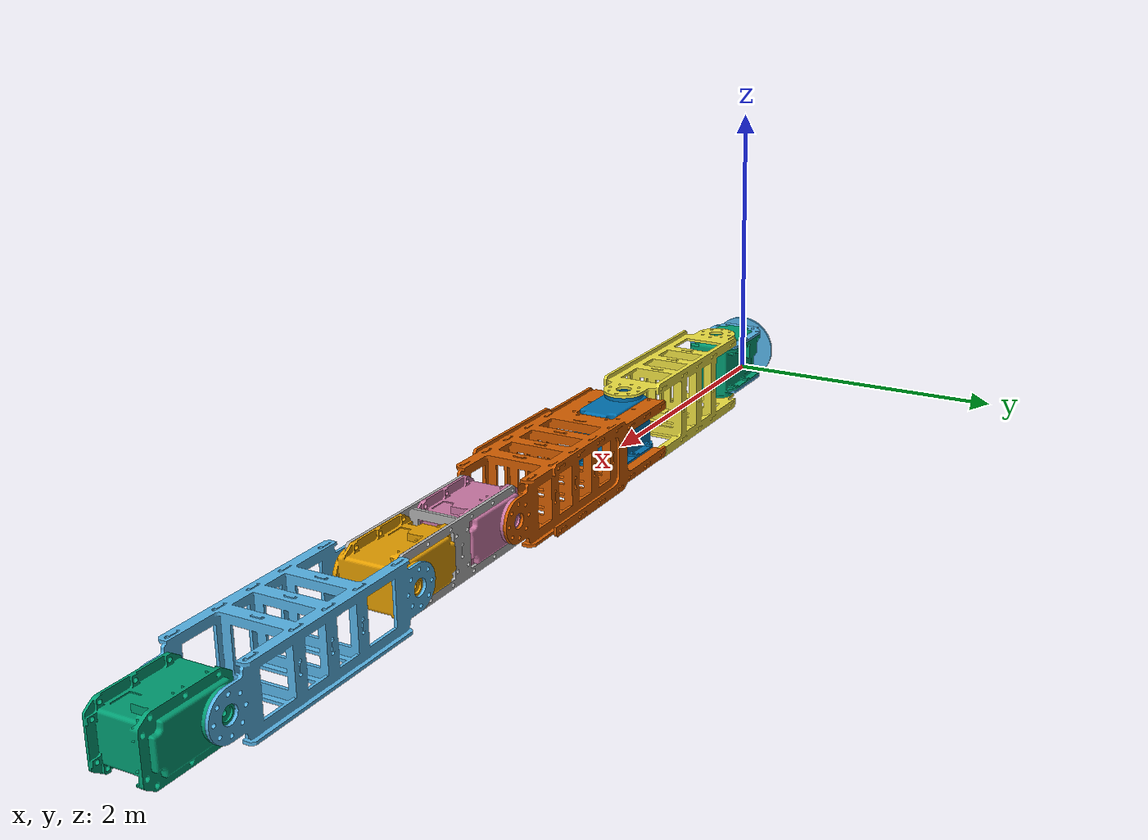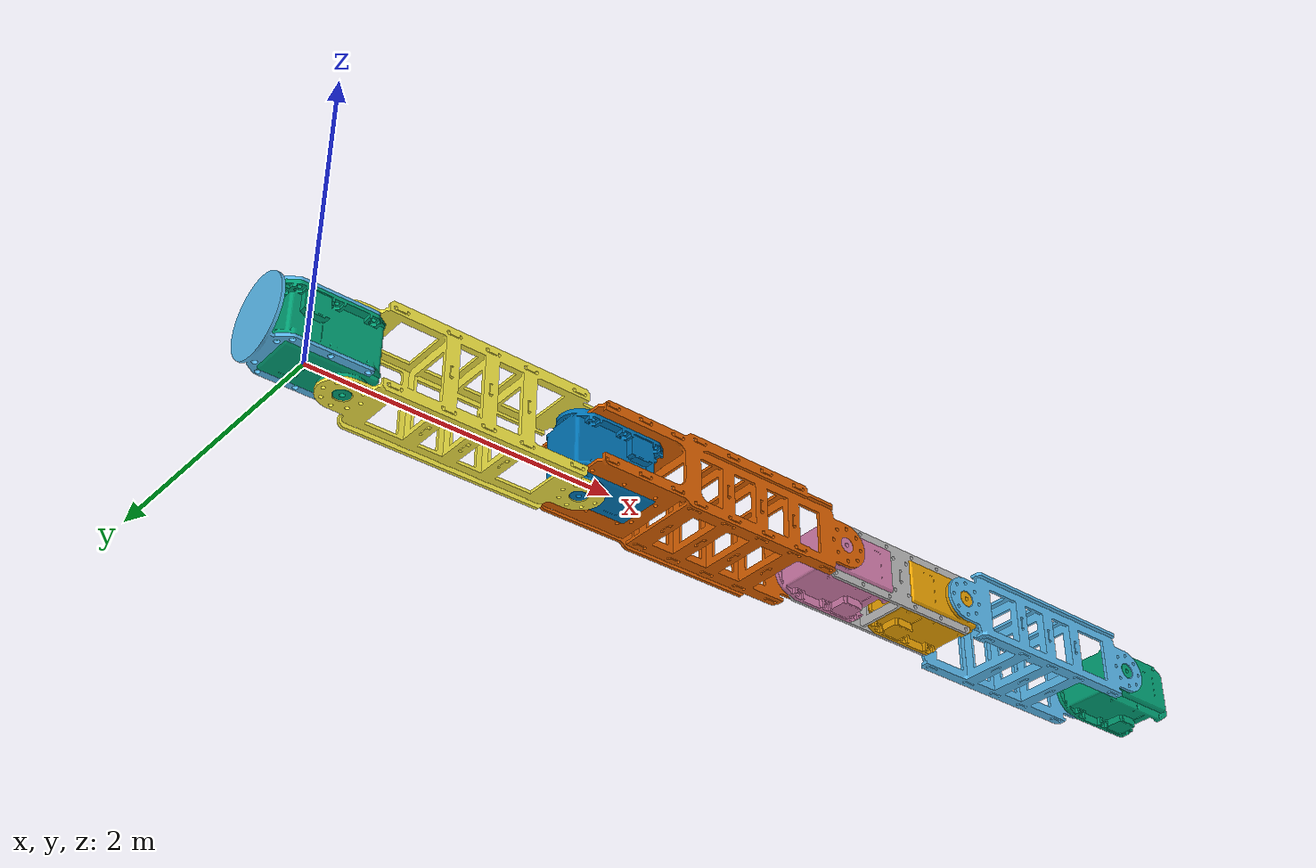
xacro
<?xml version="1.0"?>

<robot name="asap_manipulator" xmlns:xacro="http://ros.org/wiki/xacro">

  <xacro:include filename="$(find aerial_manipulators_description)/urdf/manipulator_base.urdf.xacro" />

  <link name="world"></link>

  <xacro:asap_manipulator
    parent="world">
    <origin xyz="0 0 0" rpy="0 0 0"/>
  </xacro:asap_manipulator>

  <xacro:transmisija
    trans_number="1"
    joint_name="joint1">
  </xacro:transmisija>

  <xacro:transmisija
    trans_number="2"
    joint_name="joint2">
  </xacro:transmisija>

  <xacro:transmisija
    trans_number="3"
    joint_name="joint3">
  </xacro:transmisija>

  <xacro:transmisija
    trans_number="4"
    joint_name="joint4">
  </xacro:transmisija>

  <xacro:transmisija
    trans_number="5"
    joint_name="joint5">
  </xacro:transmisija>

</robot>

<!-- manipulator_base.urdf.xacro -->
<robot xmlns:xacro="http://ros.org/wiki/xacro">

  <xacro:macro name="wp_manipulator" params="parent *origin">

    <xacro:property name="a0" value="0.04526"/>
    <xacro:property name="a1" value="0.122490"/>
    <xacro:property name="a2" value="0.1365"/>
    <xacro:property name="a3" value="0.075511"/>
    <xacro:property name="a4" value="0.072489"/>
    <xacro:property name="d5" value="0.04526"/>
    <xacro:property name="theta1" value="${pi/2}"/>
    <xacro:property name="alpha2" value="${-pi/2}"/>

    <xacro:property name="mass2" value="0.03"/>
    <xacro:property name="mass1" value="${mass2*a1/a2}"/>
    <xacro:property name="mass3" value="${mass2*a3/a2}"/>
    <xacro:property name="mass4" value="${mass2*a4/a2}"/>
    <xacro:property name="mass5" value="${mass2*d5/a2}"/>

    <xacro:property name="rad" value="0.03"/>

    <link name='base'>
      <inertial>
        <mass value="${mass5}" />
        <origin xyz="0 -${a0/2} 0" rpy="0 0 0"/>
        <inertia
          ixx="${1/2 * mass5 * rad * rad}" ixy="0" ixz="0"
          iyx="0" iyy="${1/12 * mass5 * (3*rad*rad + a0*a0)}" iyz="0"
          izx="0" izy="0" izz="${1/12 * mass5 * (3*rad*rad + a0*a0)}"/>
      </inertial>

      <visual>
        <origin xyz="0 0 0" rpy="0 0 0" />
        <geometry>
          <mesh filename="package://aerial_manipulators_description/meshes/wp_manipulator/base.dae"
            scale="1 1 1" />
        </geometry>
      </visual>
    </link>

    <link name='link1'>
      <inertial>
        <mass value="${mass1}" />
        <origin xyz="0 ${a1/2} 0" rpy="0 0 0"/>
        <inertia
          ixx="${1/12 * mass1 * (3*rad*rad + a1*a1)}" ixy="0" ixz="0"
          iyx="0" iyy="${1/2 * mass1 * rad * rad}" iyz="0"
          izx="0" izy="0" izz="${1/12 * mass1 * (3*rad*rad + a1*a1)}"/>
      </inertial>

      <visual>
        <origin xyz="0 0 0" rpy="0 0 0" />
        <geometry>
          <mesh filename="package://aerial_manipulators_description/meshes/wp_manipulator/link1.dae"
            scale="1 1 1" />
        </geometry>
      </visual>
    </link>

    <link name='link2'>
      <inertial>
        <mass value="${mass2}" />
        <origin xyz="${a2/2} 0 0" rpy="0 0 0"/>
        <inertia
          ixx="${1/2 * mass2 * rad * rad}" ixy="0" ixz="0"
          iyx="0" iyy="${1/12 * mass2 * (3*rad*rad + a2*a2)}" iyz="0"
          izx="0" izy="0" izz="${1/12 * mass2 * (3*rad*rad + a2*a2)}"/>
      </inertial>

      <visual>
        <origin xyz="0 0 0" rpy="0 0 -${pi / 2}" />
        <geometry>
          <mesh filename="package://aerial_manipulators_description/meshes/wp_manipulator/link2.dae"
            scale="1 1 1" />
        </geometry>
      </visual>
    </link>

    <link name='link3'>
      <inertial>
        <mass value="${mass3}" />
        <origin xyz="${a3/2} 0 0" rpy="0 0 0"/>
        <inertia
          ixx="${1/2 * mass3 * rad * rad}" ixy="0" ixz="0"
          iyx="0" iyy="${1/12 * mass3 * (3*rad*rad + a3*a3)}" iyz="0"
          izx="0" izy="0" izz="${1/12 * mass3 * (3*rad*rad + a3*a3)}"/>
      </inertial>

      <visual>
        <origin xyz="0 0 0" rpy="0 ${pi / 2} ${-pi / 2}" />
        <geometry>
          <mesh filename="package://aerial_manipulators_description/meshes/wp_manipulator/link3.dae"
            scale="1 1 1" />
        </geometry>
      </visual>
    </link>

    <link name='link4'>
      <inertial>
        <mass value="${mass4}" />
        <origin xyz="${a4/2} 0 0" rpy="0 0 0"/>
        <inertia
          ixx="${1/2 * mass4 * rad * rad}" ixy="0" ixz="0"
          iyx="0" iyy="${1/12 * mass4 * (3*rad*rad + a4*a4)}" iyz="0"
          izx="0" izy="0" izz="${1/12 * mass4 * (3*rad*rad + a4*a4)}"/>
      </inertial>

      <visual>
        <origin xyz="0 0 0" rpy="0 ${pi / 2} -${pi / 2}" />
        <geometry>
          <mesh filename="package://aerial_manipulators_description/meshes/wp_manipulator/link4.dae"
            scale="1 1 1" />
        </geometry>
      </visual>
    </link>

    <link name='link5'>
      <inertial>
        <mass value="${mass5}" />
        <origin xyz="${d5/2} 0 0" rpy="0 0 0"/>
        <inertia
          ixx="${1/2 * mass5 * rad * rad}" ixy="0" ixz="0"
          iyx="0" iyy="${1/12 * mass5 * (3*rad*rad + d5*d5)}" iyz="0"
          izx="0" izy="0" izz="${1/12 * mass5 * (3*rad*rad + d5*d5)}"/>
      </inertial>

      <visual>
        <origin xyz="0 0 0" rpy="0 ${pi / 2} 0" />
        <geometry>
          <mesh filename="package://aerial_manipulators_description/meshes/wp_manipulator/link5.dae"
            scale="1 1 1" />
        </geometry>
      </visual>
    </link>

    <link name='end_effector_base'>
      <inertial>
        <mass value="0.00001" />
        <origin xyz="0 0 0" rpy="0 0 0"/>
        <inertia
          ixx="0.00001" ixy="0" ixz="0"
          iyx="0" iyy="0.00001" iyz="0"
          izx="0" izy="0" izz="0.00001"/>
      </inertial>

      <visual>
        <geometry>
          <sphere radius="0.005"/>
        </geometry>
      </visual>
    </link>

    <joint name="wp_base_joint" type="fixed">
      <parent link="${parent}"/>
      <child link="base"/>
      <xacro:insert_block name="origin"/>
    </joint>

    <joint name="joint1" type="revolute">
      <parent link="base"/>
      <child link="link1"/>
      <!-- Adjust Gazebo coordinate system to link1 coordinate system -->
      <origin xyz="0 0 0" rpy="0 0 0"/>
      <limit upper="1.57" lower="-1.57" effort="10000000" velocity="46"/>
      <axis xyz="0 0 1" />
    </joint>

    <joint name="joint2" type="revolute">
      <parent link="link1"/>
      <child link="link2"/>
      <origin xyz="0 ${a1} 0" rpy="0 0 ${theta1}"/>
      <limit upper="2.0" lower="-2.0" effort="10000000" velocity="46"/>
      <axis xyz="0 0 1" />
    </joint>

    <joint name="joint3" type="revolute">
      <parent link="link2"/>
      <child link="link3"/>
      <origin xyz="${a2} 0 0" rpy="${alpha2} 0 0"/>
      <limit upper="1.57" lower="-1.57" effort="10000000" velocity="46"/>
      <axis xyz="0 0 1" />
    </joint>

    <joint name="joint4" type="revolute">
      <parent link="link3"/>
      <child link="link4"/>
      <origin xyz="${a3} 0 0" rpy="0 0 0"/>
      <limit upper="2.0" lower="-2.0" effort="10000000" velocity="46"/>
      <axis xyz="0 0 1" />
    </joint>

    <joint name="joint5" type="revolute">
      <parent link="link4"/>
      <child link="link5"/>
      <origin xyz="${a4} 0 0" rpy="0 0 0"/>
      <limit upper="2.3" lower="-2.3" effort="10000000" velocity="46"/>
      <axis xyz="0 0 1" />
    </joint>

    <joint name="jointEndEffectorBase" type="fixed">
      <parent link="link5"/>
      <child link="end_effector_base"/>
      <origin xyz="${d5} 0 0" rpy="0 0 0"/>
    </joint>
  </xacro:macro>

  <xacro:macro name="wp_manipulator_3rx"
  params="parent *origin">

    <xacro:property name="a0" value="0.04526"/>
    <xacro:property name="a1" value="0.122490"/>
    <xacro:property name="a2" value="0.1365"/>
    <xacro:property name="a3" value="0.075511"/>
    <xacro:property name="a4" value="0.072489"/>
    <xacro:property name="d5" value="0.04526"/>
    <xacro:property name="theta1" value="${pi/2}"/>
    <xacro:property name="alpha2" value="${-pi/2}"/>

    <xacro:property name="mass2" value="0.03"/>
    <xacro:property name="mass1" value="${mass2*a1/a2}"/>
    <xacro:property name="mass3" value="${mass2*a3/a2}"/>
    <xacro:property name="mass4" value="${mass2*a4/a2}"/>
    <xacro:property name="mass5" value="${mass2*d5/a2}"/>

    <xacro:property name="rad" value="0.03"/>

    <link name='base'>
      <inertial>
        <mass value="${mass2}" />
        <origin xyz="${a2/2} 0 0" rpy="0 0 0"/>
        <inertia
          ixx="${1/2 * mass2 * rad * rad}" ixy="0" ixz="0"
          iyx="0" iyy="${1/12 * mass2 * (3*rad*rad + a2*a2)}" iyz="0"
          izx="0" izy="0" izz="${1/12 * mass2 * (3*rad*rad + a2*a2)}"/>
      </inertial>

      <visual>
        <origin xyz="0 0 0" rpy="0 0 -${pi / 2}" />
        <geometry>
          <mesh filename="package://aerial_manipulators_description/meshes/wp_manipulator/link2.dae"
            scale="1 1 1" />
        </geometry>
      </visual>
    </link>

    <link name='link1'>
      <inertial>
        <mass value="${mass3}" />
        <origin xyz="${a3/2} 0 0" rpy="0 0 0"/>
        <inertia
          ixx="${1/2 * mass3 * rad * rad}" ixy="0" ixz="0"
          iyx="0" iyy="${1/12 * mass3 * (3*rad*rad + a3*a3)}" iyz="0"
          izx="0" izy="0" izz="${1/12 * mass3 * (3*rad*rad + a3*a3)}"/>
      </inertial>

      <visual>
        <origin xyz="0 0 0" rpy="0 ${pi / 2} ${-pi / 2}" />
        <geometry>
          <mesh filename="package://aerial_manipulators_description/meshes/wp_manipulator/link3.dae"
            scale="1 1 1" />
        </geometry>
      </visual>
    </link>

    <link name='link2'>
      <inertial>
        <mass value="${mass4}" />
        <origin xyz="${a4/2} 0 0" rpy="0 0 0"/>
        <inertia
          ixx="${1/2 * mass4 * rad * rad}" ixy="0" ixz="0"
          iyx="0" iyy="${1/12 * mass4 * (3*rad*rad + a4*a4)}" iyz="0"
          izx="0" izy="0" izz="${1/12 * mass4 * (3*rad*rad + a4*a4)}"/>
      </inertial>

      <visual>
        <origin xyz="0 0 0" rpy="0 ${pi / 2} -${pi / 2}" />
        <geometry>
          <mesh filename="package://aerial_manipulators_description/meshes/wp_manipulator/link4.dae"
            scale="1 1 1" />
        </geometry>
      </visual>
    </link>

    <link name='link3'>
      <inertial>
        <mass value="${mass5}" />
        <origin xyz="${d5/2} 0 0" rpy="0 0 0"/>
        <inertia
          ixx="${1/2 * mass5 * rad * rad}" ixy="0" ixz="0"
          iyx="0" iyy="${1/12 * mass5 * (3*rad*rad + d5*d5)}" iyz="0"
          izx="0" izy="0" izz="${1/12 * mass5 * (3*rad*rad + d5*d5)}"/>
      </inertial>

      <visual>
        <origin xyz="0 0 0" rpy="0 ${pi / 2} 0" />
        <geometry>
          <mesh filename="package://aerial_manipulators_description/meshes/wp_manipulator/link5.dae"
            scale="1 1 1" />
        </geometry>
      </visual>
    </link>

    <link name='end_effector_base'>
      <inertial>
        <mass value="0.00001" />
        <origin xyz="0 0 0" rpy="0 0 0"/>
        <inertia
          ixx="0.00001" ixy="0" ixz="0"
          iyx="0" iyy="0.00001" iyz="0"
          izx="0" izy="0" izz="0.00001"/>
      </inertial>

      <visual>
        <geometry>
          <sphere radius="0.005"/>
        </geometry>
      </visual>
    </link>

    <joint name="wp_base_joint" type="fixed">
      <parent link="${parent}"/>
      <child link="base"/>
      <xacro:insert_block name="origin"/>
    </joint>

    <joint name="joint1" type="revolute">
      <parent link="base"/>
      <child link="link1"/>
      <origin xyz="${a2} 0 0" rpy="${alpha2} 0 0"/>
      <limit upper="1.57" lower="-1.57" effort="10000000" velocity="46"/>
      <axis xyz="0 0 1" />
    </joint>

    <joint name="joint2" type="revolute">
      <parent link="link1"/>
      <child link="link2"/>
      <origin xyz="${a3} 0 0" rpy="0 0 0"/>
      <limit upper="2.0" lower="-2.0" effort="10000000" velocity="46"/>
      <axis xyz="0 0 1" />
    </joint>

    <joint name="joint3" type="revolute">
      <parent link="link2"/>
      <child link="link3"/>
      <origin xyz="${a4} 0 0" rpy="0 0 0"/>
      <limit upper="2.3" lower="-2.3" effort="10000000" velocity="46"/>
      <axis xyz="0 0 1" />
    </joint>

    <joint name="jointEndEffectorBase" type="fixed">
      <parent link="link3"/>
      <child link="end_effector_base"/>
      <origin xyz="${d5} 0 0" rpy="0 0 0"/>
    </joint>

  </xacro:macro>

  <xacro:macro name="wp_manipulator_3r"
  params="parent *origin">

    <xacro:property name="a0" value="0.04526"/>
    <xacro:property name="a1" value="0.122490"/>
    <xacro:property name="a2" value="0.1365"/>
    <xacro:property name="a3" value="0.075511"/>
    <xacro:property name="a4" value="0.072489"/>
    <xacro:property name="d5" value="0.035"/>
    <xacro:property name="theta1" value="${pi/2}"/>
    <xacro:property name="alpha2" value="${-pi/2}"/>

    <xacro:property name="mass2" value="0.03"/>
    <xacro:property name="mass1" value="${mass2*a1/a2}"/>
    <xacro:property name="mass3" value="${mass2*a3/a2}"/>
    <xacro:property name="mass4" value="${mass2*a4/a2}"/>
    <xacro:property name="mass5" value="${mass2*d5/a2}"/>

    <xacro:property name="rad" value="0.03"/>

    <link name='base'>
      <inertial>
        <mass value="${mass5}" />
        <origin xyz="0 -${a0/2} 0" rpy="0 0 0"/>
        <inertia
          ixx="${1/2 * mass5 * rad * rad}" ixy="0" ixz="0"
          iyx="0" iyy="${1/12 * mass5 * (3*rad*rad + a0*a0)}" iyz="0"
          izx="0" izy="0" izz="${1/12 * mass5 * (3*rad*rad + a0*a0)}"/>
      </inertial>

      <visual>
        <origin xyz="0 0 0" rpy="0 0 0" />
        <geometry>
          <mesh filename="package://aerial_manipulators_description/meshes/wp_manipulator/base.dae"
            scale="1 1 1" />
        </geometry>
      </visual>
    </link>

    <link name='link1'>
      <inertial>
        <mass value="${mass2}" />
        <origin xyz="${a2/2} 0 0" rpy="0 0 0"/>
        <inertia
          ixx="${1/2 * mass2 * rad * rad}" ixy="0" ixz="0"
          iyx="0" iyy="${1/12 * mass2 * (3*rad*rad + a2*a2)}" iyz="0"
          izx="0" izy="0" izz="${1/12 * mass2 * (3*rad*rad + a2*a2)}"/>
      </inertial>

      <visual>
        <origin xyz="0 0 0" rpy="0 0 0" />
        <geometry>
          <mesh filename="package://aerial_manipulators_description/meshes/wp_manipulator/link2_rotated.dae"
            scale="1 1 1" />
        </geometry>
      </visual>
    </link>

    <link name='link2'>
      <inertial>
        <mass value="${mass4}" />
        <origin xyz="${a4/2} 0 0" rpy="0 0 0"/>
        <inertia
          ixx="${1/2 * mass4 * rad * rad}" ixy="0" ixz="0"
          iyx="0" iyy="${1/12 * mass4 * (3*rad*rad + a4*a4)}" iyz="0"
          izx="0" izy="0" izz="${1/12 * mass4 * (3*rad*rad + a4*a4)}"/>
      </inertial>

      <visual>
        <origin xyz="0 0 0" rpy="0 ${pi/2} ${-pi/2}" />
        <geometry>
          <mesh filename="package://aerial_manipulators_description/meshes/wp_manipulator/link4.dae"
            scale="1 1 1" />
        </geometry>
      </visual>
    </link>

    <link name='link3'>
      <inertial>
        <mass value="${mass5}" />
        <origin xyz="${a0/2} 0 0" rpy="0 0 0"/>
        <inertia
          ixx="${1/2 * mass5 * rad * rad}" ixy="0" ixz="0"
          iyx="0" iyy="${1/12 * mass5 * (3*rad*rad + a0*a0)}" iyz="0"
          izx="0" izy="0" izz="${1/12 * mass5 * (3*rad*rad + a0*a0)}"/>
      </inertial>

      <visual>
        <origin xyz="0 0 0" rpy="0 ${pi / 2} 0" />
        <geometry>
          <mesh filename="package://aerial_manipulators_description/meshes/wp_manipulator/link5.dae"
            scale="1 1 1" />
        </geometry>
      </visual>
    </link>

    <link name='end_effector_base'>
      <inertial>
        <mass value="0.00001" />
        <origin xyz="0 0 0" rpy="0 0 0"/>
        <inertia
          ixx="0.00001" ixy="0" ixz="0"
          iyx="0" iyy="0.00001" iyz="0"
          izx="0" izy="0" izz="0.00001"/>
      </inertial>

      <visual>
        <geometry>
          <sphere radius="0.005"/>
        </geometry>
      </visual>
    </link>

    <joint name="wp_base_joint" type="fixed">
      <parent link="${parent}"/>
      <child link="base"/>
      <xacro:insert_block name="origin"/>
    </joint>

    <joint name="joint1" type="revolute">
      <parent link="base"/>
      <child link="link1"/>
      <!-- Adjust Gazebo coordinate system to link1 coordinate system -->
      <origin xyz="0 0 0" rpy="0 0 0"/>
      <limit upper="1.57" lower="-0.25" effort="10000000" velocity="46"/>
      <axis xyz="0 0 1" />
    </joint>

    <joint name="joint2" type="revolute">
      <parent link="link1"/>
      <child link="link2"/>
      <origin xyz="0 ${a2} 0" rpy="${-pi/2} 0 ${pi/2}"/>
      <limit upper="1.57" lower="-1.57" effort="10000000" velocity="46"/>
      <axis xyz="0 0 1" />
    </joint>

    <joint name="joint3" type="revolute">
      <parent link="link2"/>
      <child link="link3"/>
      <origin xyz="${a4} 0 0" rpy="0 0 0"/>
      <limit upper="1.57" lower="-1.57" effort="10000000" velocity="46"/>
      <axis xyz="0 0 1" />
    </joint>

    <joint name="jointEndEffectorBase" type="fixed">
      <parent link="link3"/>
      <child link="end_effector_base"/>
      <origin xyz="${d5} 0 0" rpy="0 0 0"/>
    </joint>

  </xacro:macro>

  <xacro:macro name="asap_manipulator"
  params="parent *origin">

    <link name='base'>
      <inertial>
        <mass value="0.05591317991066633"/>
        <origin rpy="0 0 0" xyz="-0.025687986795480712 -0.015782916657658103 0.003881066160475582"/>
        <inertia ixx="2.3e-05" ixy="-0.0" ixz="-0.0" iyy="2.8e-05" iyz="-0.0" izz="2.6e-05"/>
      </inertial>

      <visual>
        <origin xyz="0 0 0" rpy="0 0 0" />
        <geometry>
          <mesh filename="package://aerial_manipulators_description/meshes/asap_manipulator/base_link.stl" scale="0.01 0.01 0.01"/>
        </geometry>
      </visual>
    </link>

    <link name="motor_mx_64_1">
      <inertial>
        <origin rpy="0 0 0" xyz="-0.018882072464546262 -0.017299911714351128 -0.016862110543539262"/>
        <mass value="0.16826862591308275"/>
        <inertia ixx="4e-05" ixy="0.0" ixz="1e-06" iyy="7e-05" iyz="0.0" izz="5.8e-05"/>
      </inertial>

      <visual>
        <origin rpy="0 0 0" xyz="-0.019783 -0.001517 -0.020881"/>
        <geometry>
          <mesh filename="package://aerial_manipulators_description/meshes/asap_manipulator/motor_mx_64_1.stl" scale="0.01 0.01 0.01"/>
        </geometry>
      </visual>
    </link>

    <link name="veza_vratilo_vratilo_1_1">
      <inertial>
        <origin rpy="0 0 0" xyz="0.07549991665769598 8.33423391376209e-08 -0.023499933839516474"/>
        <mass value="0.04648977062406057"/>
        <inertia ixx="3.5e-05" ixy="0.0" ixz="0.0" iyy="0.000103" iyz="-0.0" izz="9.2e-05"/>
      </inertial>

      <visual>
        <origin rpy="0 0 0" xyz="-0.015783 0.015783 -0.027381"/>
        <geometry>
          <mesh filename="package://aerial_manipulators_description/meshes/asap_manipulator/veza_vratilo_vratilo_1_1.stl" scale="0.01 0.01 0.01"/>
        </geometry>
      </visual>
    </link>

    <link name="motor_mx_64_2">
      <inertial>
       <origin rpy="0 0 0" xyz="0.014881905779876664 7.839902109452179e-08 -0.02336211054353828"/>
       <mass value="0.16826862591308275"/>
       <inertia ixx="4e-05" ixy="0.0" ixz="-1e-06" iyy="7e-05" iyz="-0.0" izz="5.8e-05"/>
      </inertial>

      <visual>
       <origin rpy="0 0 0" xyz="-0.166783 0.015783 -0.027381"/>
       <geometry>
         <mesh filename="package://aerial_manipulators_description/meshes/asap_manipulator/motor_mx_64_2.stl" scale="0.01 0.01 0.01"/>
       </geometry>
      </visual>
    </link>

    <link name="veza_vratilo_kuciste_1">
      <inertial>
       <origin rpy="0 0 0" xyz="0.09455551025733949 -0.017299916657652164 -0.016999933839072574"/>
       <mass value="0.07241513915645968"/>
       <inertia ixx="5.9e-05" ixy="0.0" ixz="0.0" iyy="0.000182" iyz="0.0" izz="0.000197"/>
      </inertial>

      <visual>
       <origin rpy="0 0 0" xyz="-0.162783 -0.001517 -0.020881"/>
       <geometry>
         <mesh filename="package://aerial_manipulators_description/meshes/asap_manipulator/veza_vratilo_kuciste_1.stl" scale="0.01 0.01 0.01"/>
       </geometry>
      </visual>
    </link>

    <link name="motor_mx_64_3">
      <inertial>
       <origin rpy="0 0 0" xyz="0.014881905779784543 -0.023362093361678785 7.110414176588267e-08"/>
       <mass value="0.16826862591308275"/>
       <inertia ixx="4e-05" ixy="-1e-06" ixz="-0.0" iyy="5.8e-05" iyz="0.0" izz="7e-05"/>
      </inertial>

      <visual>
       <origin rpy="0 0 0" xyz="-0.346333 -0.007717 -0.003881"/>
       <geometry>
         <mesh filename="package://aerial_manipulators_description/meshes/asap_manipulator/motor_mx_64_3.stl" scale="0.01 0.01 0.01"/>
       </geometry>
      </visual>
    </link>

    <link name="veza_kuciste_kuciste_1">
      <inertial>
       <origin rpy="0 0 0" xyz="0.0547499166575659 -0.016999916657664666 -0.017299933839172235"/>
       <mass value="0.01119833573986044"/>
       <inertia ixx="6e-06" ixy="-0.0" ixz="-0.0" iyy="1e-05" iyz="-0.0" izz="1e-05"/>
      </inertial>

      <visual>
       <origin rpy="0 0 0" xyz="-0.342333 -0.001217 -0.021181"/>
       <geometry>
         <mesh filename="package://aerial_manipulators_description/meshes/asap_manipulator/veza_kuciste_kuciste_1.stl" scale="0.01 0.01 0.01"/>
       </geometry>
      </visual>
    </link>

    <link name="motor_mx_64_4">
      <inertial>
       <origin rpy="0 0 0" xyz="-0.018882072464639077 -0.016862093361679393 -0.017299938782486327"/>
       <mass value="0.16826862591308275"/>
       <inertia ixx="4e-05" ixy="1e-06" ixz="-0.0" iyy="5.8e-05" iyz="-0.0" izz="7e-05"/>
      </inertial>

      <visual>
       <origin rpy="0 0 0" xyz="-0.451833 -0.001217 -0.021181"/>
       <geometry>
         <mesh filename="package://aerial_manipulators_description/meshes/asap_manipulator/motor_mx_64_4.stl" scale="0.01 0.01 0.01"/>
       </geometry>
      </visual>
    </link>

    <link name="veza_vratilo_vratilo_2_1">
      <inertial>
       <origin rpy="0 0 0" xyz="0.07549991665760297 -0.02349991665765626 6.616082339448714e-08"/>
       <mass value="0.04648977062406057"/>
       <inertia ixx="3.5e-05" ixy="0.0" ixz="-0.0" iyy="9.2e-05" iyz="0.0" izz="0.000103"/>
      </inertial>

      <visual>
       <origin rpy="0 0 0" xyz="-0.447833 -0.007717 -0.003881"/>
       <geometry>
         <mesh filename="package://aerial_manipulators_description/meshes/asap_manipulator/veza_vratilo_vratilo_2_1.stl" scale="0.01 0.01 0.01"/>
       </geometry>
      </visual>
    </link>

    <link name="motor_mx_64_6">
      <inertial>
       <origin rpy="0 0 0" xyz="0.014881905779783655 -0.023362093361679492 7.110414143368313e-08"/>
       <mass value="0.16826862591308275"/>
       <inertia ixx="4e-05" ixy="-1e-06" ixz="-0.0" iyy="5.8e-05" iyz="0.0" izz="7e-05"/>
      </inertial>

      <visual>
       <origin rpy="0 0 0" xyz="-0.598833 -0.007717 -0.003881"/>
       <geometry>
         <mesh filename="package://aerial_manipulators_description/meshes/asap_manipulator/motor_mx_64_6.stl" scale="0.01 0.01 0.01"/>
       </geometry>
      </visual>
    </link>

    <joint name="asap_base_joint" type="fixed">
      <parent link="${parent}"/>
      <child link="base"/>
      <xacro:insert_block name="origin"/>
    </joint>

    <joint name="Rigid1" type="fixed">
      <origin rpy="0 0 0" xyz="0.019783 0.001517 0.020881"/>
      <parent link="base"/>
      <child link="motor_mx_64_1"/>
    </joint>

    <joint name="joint1" type="continuous">
      <origin rpy="0 0 0" xyz="-0.004 -0.0173 0.0065"/>
      <parent link="motor_mx_64_1"/>
      <child link="veza_vratilo_vratilo_1_1"/>
      <axis xyz="-0.0 0.0 1.0"/>
    </joint>

    <joint name="joint2" type="continuous">
      <origin rpy="0 0 0" xyz="0.151 0.0 0.0"/>
      <parent link="veza_vratilo_vratilo_1_1"/>
      <child link="motor_mx_64_2"/>
      <axis xyz="0.0 -0.0 -1.0"/>
    </joint>

    <joint name="Rigid4" type="fixed">
      <origin rpy="0 0 0" xyz="-0.004 0.0173 -0.0065"/>
      <parent link="motor_mx_64_2"/>
      <child link="veza_vratilo_kuciste_1"/>
    </joint>

    <joint name="joint3" type="continuous">
      <origin rpy="0 0 0" xyz="0.18355 0.0062 -0.017"/>
      <parent link="veza_vratilo_kuciste_1"/>
      <child link="motor_mx_64_3"/>
      <axis xyz="0.0 -1.0 0.0"/>
    </joint>

    <joint name="Rigid6" type="fixed">
      <origin rpy="0 0 0" xyz="-0.004 -0.0065 0.0173"/>
      <parent link="motor_mx_64_3"/>
      <child link="veza_kuciste_kuciste_1"/>
    </joint>

    <joint name="Rigid7" type="fixed">
      <origin rpy="0 0 0" xyz="0.1095 0.0 0.0"/>
      <parent link="veza_kuciste_kuciste_1"/>
      <child link="motor_mx_64_4"/>
    </joint>

    <joint name="joint4" type="continuous">
      <origin rpy="0 0 0" xyz="-0.004 0.0065 -0.0173"/>
      <parent link="motor_mx_64_4"/>
      <child link="veza_vratilo_vratilo_2_1"/>
      <axis xyz="0.0 1.0 -0.0"/>
    </joint>

    <joint name="joint5" type="continuous">
      <origin rpy="0 0 0" xyz="0.151 0.0 0.0"/>
      <parent link="veza_vratilo_vratilo_2_1"/>
      <child link="motor_mx_64_6"/>
      <axis xyz="0.0 -1.0 0.0"/>
    </joint>

  </xacro:macro>

  <xacro:macro name="transmisija" params="trans_number joint_name">
    <transmission name="transmission_${trans_number}">
      <type>transmission_interface/SimpleTransmission</type>
      <joint name="${joint_name}">
        <hardwareInterface>hardware_interface/EffortJointInterface</hardwareInterface>
      </joint>
      <actuator name="motor_${trans_number}">
        <hardwareInterface>hardware_interface/EffortActuatorInterface</hardwareInterface>
        <mechanicalReduction>1</mechanicalReduction>
      </actuator>
    </transmission>
  </xacro:macro>

</robot>
